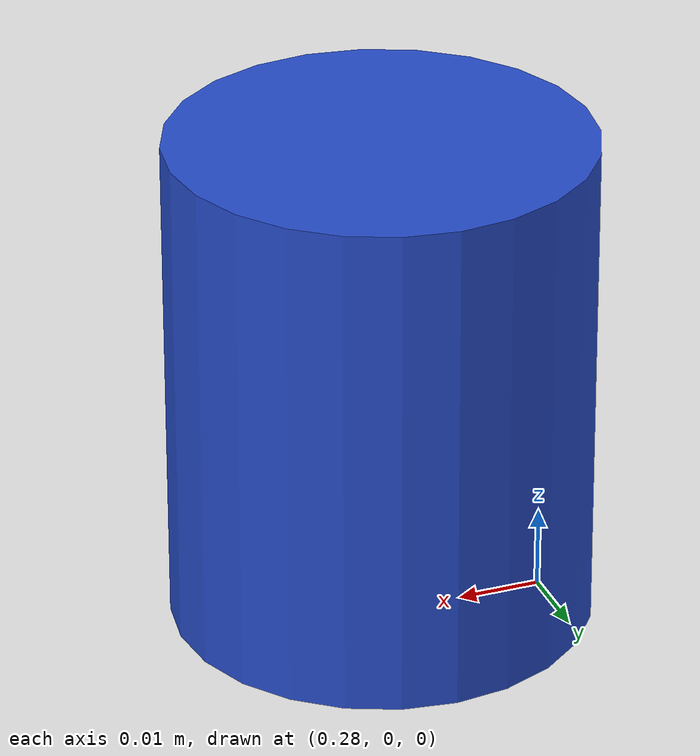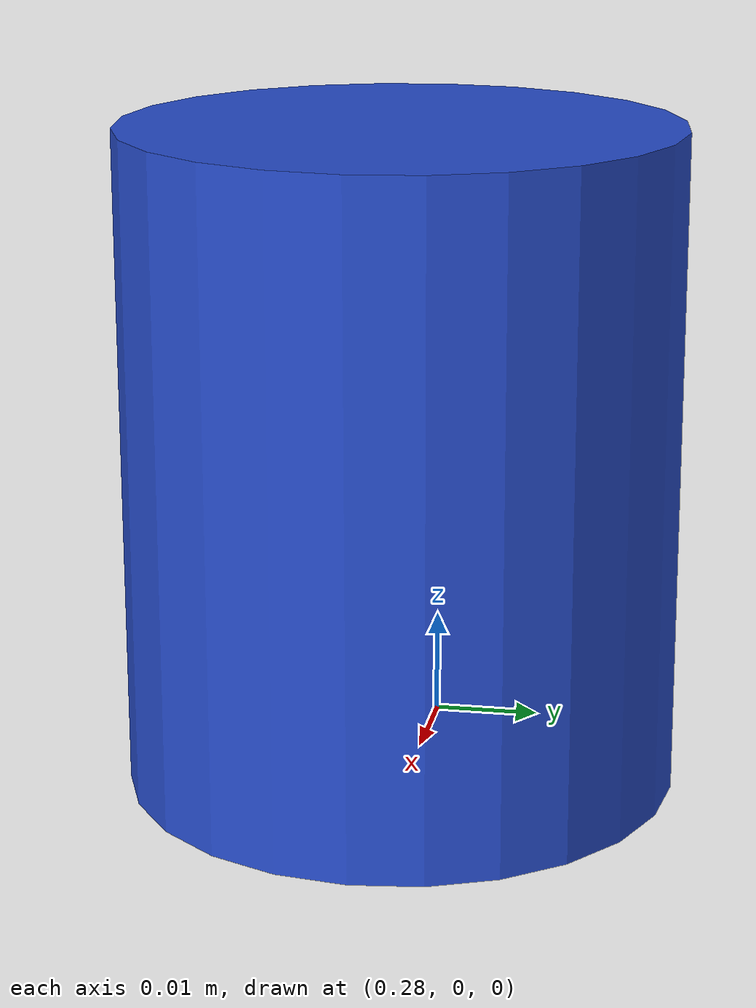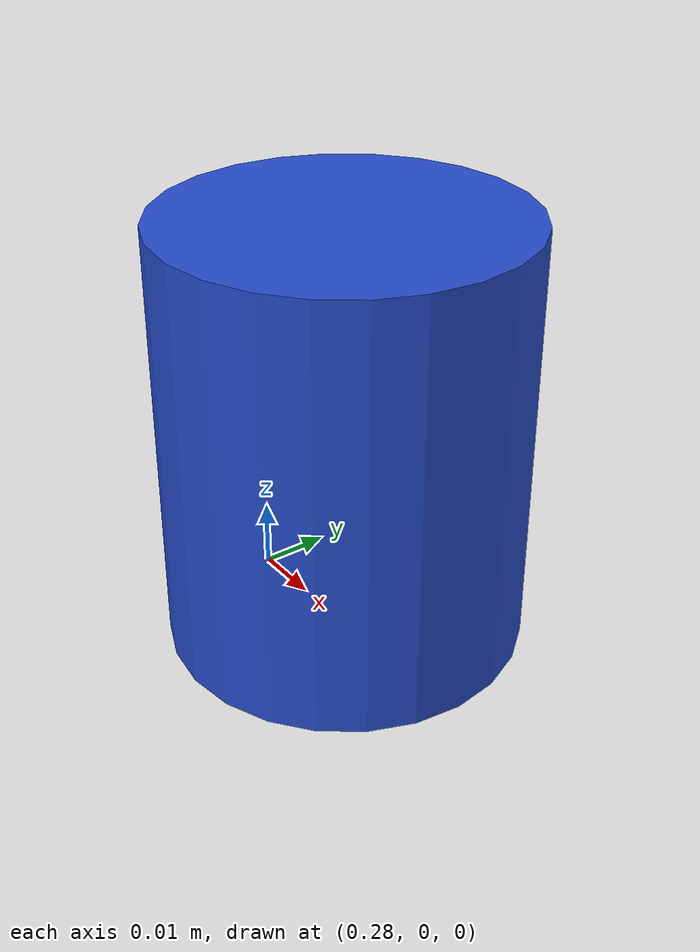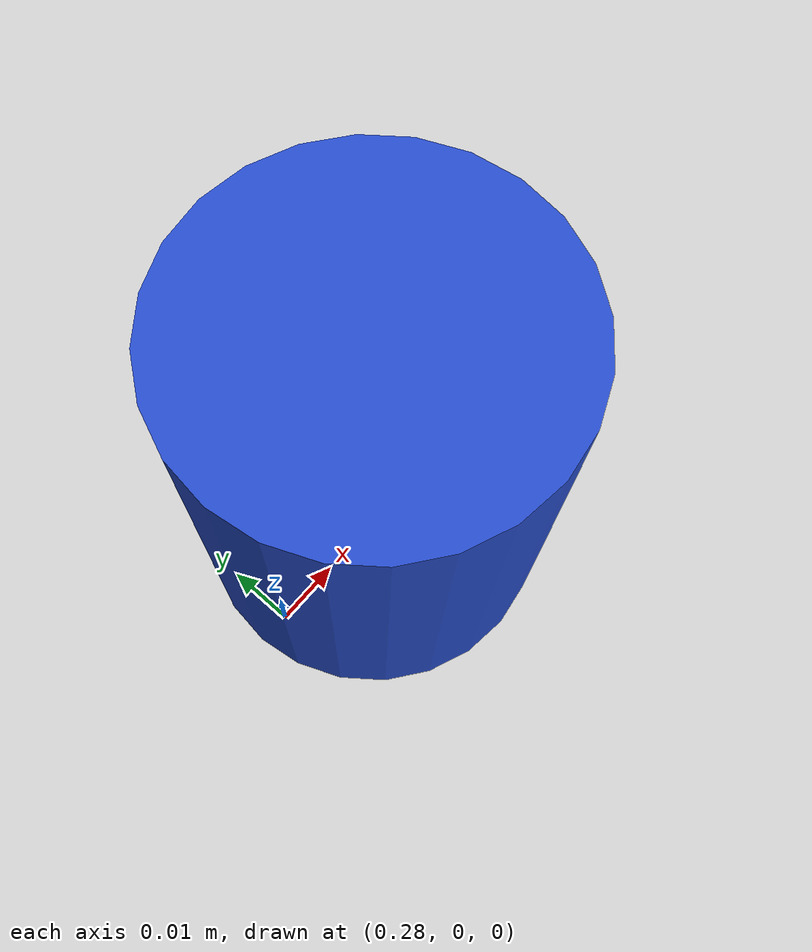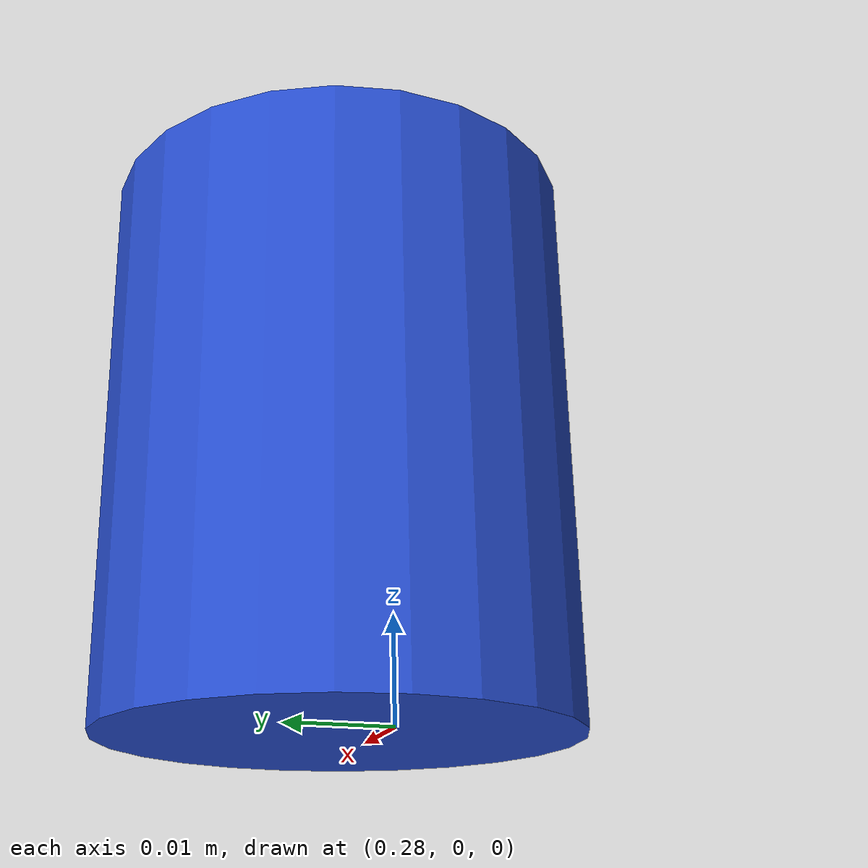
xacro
<?xml version="1.0"?>
<robot name="cylinder1">

<link name="base_link">
  <collision>
    <origin xyz="0.3 0 0.032" rpy="0 0 0"/>
    <geometry>
      <cylinder length="0.06" radius="0.025" />
    </geometry>
  </collision>

  <visual>
    <origin xyz="0.3 0 0.032" rpy="0 0 0"/>
    <geometry>
      <cylinder length="0.06" radius="0.025" />
    </geometry>
  </visual>

  <inertial>
    <origin xyz="0.3 0 0.032" rpy="0 0 0" />
    <mass value="0.05" />
    <inertia
      ixx="2.2813e-5" ixy="0.0" ixz="0.0"
      iyy="2.2813e-5" iyz="0.0"
      izz="1.5625e-5" />
  </inertial>
  </link>

<gazebo reference="base_link">
  <material>Gazebo/Blue</material>
    <mu1>2.0</mu1>
    <mu2>2.0</mu2>
</gazebo>

</robot>
